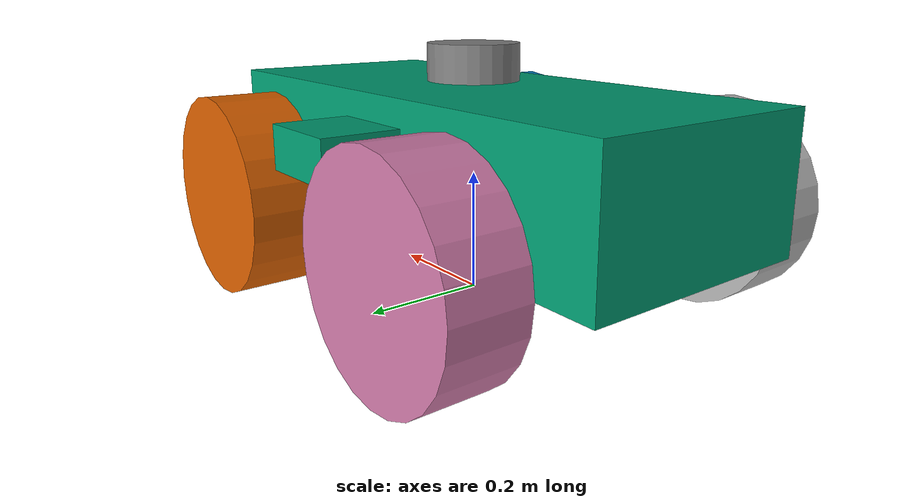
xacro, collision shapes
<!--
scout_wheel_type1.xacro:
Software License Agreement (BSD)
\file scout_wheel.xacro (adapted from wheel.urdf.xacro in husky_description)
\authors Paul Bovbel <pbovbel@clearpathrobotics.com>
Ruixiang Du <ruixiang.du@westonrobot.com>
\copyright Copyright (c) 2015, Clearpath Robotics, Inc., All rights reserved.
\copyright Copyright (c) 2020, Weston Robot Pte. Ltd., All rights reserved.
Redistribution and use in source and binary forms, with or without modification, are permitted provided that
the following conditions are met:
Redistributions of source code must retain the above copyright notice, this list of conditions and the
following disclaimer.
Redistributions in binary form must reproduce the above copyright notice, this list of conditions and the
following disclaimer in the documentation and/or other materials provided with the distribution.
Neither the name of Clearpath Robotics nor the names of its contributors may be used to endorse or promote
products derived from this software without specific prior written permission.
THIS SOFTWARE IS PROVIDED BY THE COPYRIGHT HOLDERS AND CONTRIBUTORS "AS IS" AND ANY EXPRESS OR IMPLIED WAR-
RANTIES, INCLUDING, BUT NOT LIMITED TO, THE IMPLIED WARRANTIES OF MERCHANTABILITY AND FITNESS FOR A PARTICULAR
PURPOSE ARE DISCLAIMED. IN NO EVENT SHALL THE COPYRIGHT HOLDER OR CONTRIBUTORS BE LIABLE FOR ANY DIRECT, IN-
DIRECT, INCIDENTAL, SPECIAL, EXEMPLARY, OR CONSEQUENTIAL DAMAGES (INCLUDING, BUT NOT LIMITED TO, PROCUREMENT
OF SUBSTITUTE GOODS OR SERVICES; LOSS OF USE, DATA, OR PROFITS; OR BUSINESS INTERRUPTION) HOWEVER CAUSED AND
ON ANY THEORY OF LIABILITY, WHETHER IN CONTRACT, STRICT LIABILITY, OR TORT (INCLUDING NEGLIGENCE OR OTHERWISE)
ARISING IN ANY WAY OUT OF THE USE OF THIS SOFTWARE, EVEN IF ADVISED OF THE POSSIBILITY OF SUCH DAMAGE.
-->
<?xml version="1.0"?>

<robot name="scout_v2" xmlns:xacro="http://ros.org/wiki/xacro">

	<!-- odometry source: world ground truth or wheels encoders -->
	<xacro:arg name="odometry_source" default="ground_truth" />

	<!-- load gazebo xacro -->
	<xacro:arg name="load_gazebo" default="true" />

	<xacro:arg name="simulation" default="true" />

	<xacro:include filename="$(find agilex_scout)/urdf/mobile_robot/scout_v2.urdf.xacro" />
	<xacro:scout_v2 odometry_source="$(arg odometry_source)" load_gazebo="$(arg load_gazebo)" />

	<xacro:unless value="$(arg simulation)">

		<!-- addition of OS1 sensor when loading the real Scout -->
		<xacro:include filename="$(find agilex_scout)/urdf/sensors/os1.urdf" />

		<joint name="os1_joint" type="fixed">
			<origin xyz="0.2 0.0 0.64" rpy="0.0 0.0 0.0" />
			<parent link="mobile_robot_base_link" />
			<child link="os_sensor" />
		</joint>

	</xacro:unless>

</robot>

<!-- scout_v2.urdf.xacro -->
<robot name="scout_v2" xmlns:xacro="http://ros.org/wiki/xacro">

	<xacro:macro name="scout_v2" params="odometry_source load_gazebo">

		<!-- Variables -->

		<!-- Collision boxes geometries -->
		<xacro:property name="base_x_size" value="0.9250000" />
		<xacro:property name="base_y_size" value="0.380000" />
		<xacro:property name="base_z_size" value="0.210000" />

		<!-- vehicle geometries -->
		<xacro:property name="wheelbase" value="0.498" />
		<xacro:property name="track" value="0.58306" />
		<xacro:property name="wheel_vertical_offset" value="-0.0702" />

		<xacro:property name="wheel_length" value="1.1653e-01" />
		<xacro:property name="wheel_radius" value="1.6459e-01" />

		<!-- virtual joints to link to ground and to odom -->
		<link name="base_footprint" />

		<joint name="base_footprint_to_base_link" type="fixed">
			<origin xyz="0 0 ${wheel_radius - wheel_vertical_offset}" rpy="0 0 0" />
			<parent link="base_footprint" />
			<child link="base_link" />
		</joint>

		<link name="base_link" />

		<joint name="base_link_to_mobile_robot" type="fixed">
			<origin xyz="0 0 0" rpy="0 0 0" />
			<parent link="base_link" />
			<child link="mobile_robot_base_link" />
		</joint>

		<!-- Base link -->
		<link name="mobile_robot_base_link">
			<visual>
				<origin xyz="0 0 0" rpy="0 0 0" />
				<geometry>
					<mesh
						filename="file://$(find agilex_scout)/meshes/mobile_robot/mobile_robot_base_link.dae" />
				</geometry>
			</visual>
			<collision>
				<origin xyz="0 0 0.008" rpy="0 0 0" />
				<geometry>
					<box size="${base_x_size} ${base_y_size} ${base_z_size}" />
				</geometry>
			</collision>
			<collision>
				<origin xyz="0 0 ${base_z_size/6}" rpy="0 0 0" />
				<geometry>
					<box size="${base_x_size/6} ${base_y_size*1.65} ${base_z_size/3}" />
				</geometry>
			</collision>
		</link>

		<link name="inertial_link">
			<inertial>
				<mass value="50" />
				<origin xyz="0.0 0.0 0.0" />
				<inertia ixx="2.288641" ixy="0" ixz="0" iyy="5.103976" iyz="0" izz="3.431465" />
			</inertial>
		</link>

		<joint name="inertial_joint" type="fixed">
			<origin xyz="0 0 0" rpy="0 0 0" />
			<parent link="mobile_robot_base_link" />
			<child link="inertial_link" />
		</joint>

		<!-- Scout wheel macros -->
		<xacro:include filename="$(find agilex_scout)/urdf/mobile_robot/scout_wheel_type1.xacro" />
		<xacro:include filename="$(find agilex_scout)/urdf/mobile_robot/scout_wheel_type2.xacro" />
		<!-- wheel labeled from 0 to 3, conter-clockwise, starting from front right wheel -->
		<!-- motor 1 and 2 (left side) are mechanically installed in a reversed direction -->
		<xacro:scout_wheel_type1 wheel_prefix="front_right" x="${wheelbase/2}" y="${-track/2}"
			z="${wheel_vertical_offset}" phi="0" />

		<xacro:scout_wheel_type2 wheel_prefix="front_left" x="${wheelbase/2}" y="${track/2}"
			z="${wheel_vertical_offset}" phi="0" />

		<xacro:scout_wheel_type1 wheel_prefix="rear_left" x="${-wheelbase/2}" y="${track/2}"
			z="${wheel_vertical_offset}" phi="0" />

		<xacro:scout_wheel_type2 wheel_prefix="rear_right" x="${-wheelbase/2}" y="${-track/2}"
			z="${wheel_vertical_offset}" phi="0" />

		<link name="front_mount" />

		<joint name="front_mount_joint" type="fixed">
			<origin xyz="0.325 0.0 0.112701" rpy="0 0 0" />
			<parent link="mobile_robot_base_link" />
			<child link="front_mount" />
		</joint>

		<link name="rear_mount" />

		<joint name="rear_mount_joint" type="fixed">
			<origin xyz="-0.325 0.0 0.112701" rpy="0 0 0" />
			<parent link="mobile_robot_base_link" />
			<child link="rear_mount" />
		</joint>

		<!-- Gazebo definitions  -->
		<xacro:if value="${load_gazebo}">
			<xacro:include filename="$(find agilex_scout)/urdf/mobile_robot/scout_v2.gazebo" />
		</xacro:if>

	</xacro:macro>

</robot>

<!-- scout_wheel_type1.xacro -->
<robot xmlns:xacro="http://ros.org/wiki/xacro" name="scout_v2">

	<xacro:macro name="scout_wheel_type1" params="wheel_prefix x y z phi">

		<link name="${wheel_prefix}_wheel_link">
			<inertial>
				<mass value="8" />
				<origin xyz="0 0 0" />
				<inertia ixx="0.1171" ixy="0" ixz="0" iyy="0.1361" iyz="0" izz="0.1171" />
			</inertial>
			<visual>
				<origin xyz="0 0 0" rpy="0 0 0" />
				<geometry>
					<mesh filename="file://$(find agilex_scout)/meshes/mobile_robot/wheel_type1.dae" />
				</geometry>
			</visual>
			<collision>
				<origin xyz="0 0 0" rpy="${pi/2} 0 0" />
				<geometry>
					<cylinder length="${wheel_length}" radius="${wheel_radius}" />
				</geometry>
				<surface>
					<contact>
						<ode>
							<min_depth>0.001</min_depth>
							<kp>1000000000.0</kp>
							<kd>0.0</kd>
						</ode>
					</contact>
					<friction>
						<ode>
							<mu>0.9</mu>
							<mu2>0.7</mu2>
							<fdir1>1 0 0</fdir1>
						</ode>
					</friction>
				</surface>
			</collision>
		</link>

		<!-- if gazebo is loaded, simulate the robot wheel rotations and broadcast the join states-->
		<xacro:if value="$(arg load_gazebo)">
			<joint name="${wheel_prefix}_wheel" type="continuous">
				<parent link="mobile_robot_base_link" />
				<child link="${wheel_prefix}_wheel_link" />
				<origin xyz="${x} ${y} ${z}" rpy="${phi} 0.0 0.0" />
				<axis xyz="0 1 0" rpy="0 0 0" />
				<dynamics damping="0.0" friction="20" />
			</joint>
		</xacro:if>

		<!-- if real robot is loaded, fixed wheels are used because no joint broadcasters are available -->
		<xacro:unless value="$(arg load_gazebo)">
			<joint name="${wheel_prefix}_wheel" type="fixed">
				<parent link="mobile_robot_base_link" />
				<child link="${wheel_prefix}_wheel_link" />
				<origin xyz="${x} ${y} ${z}" rpy="${phi} 0.0 0.0" />
				<axis xyz="0 1 0" rpy="0 0 0" />
			</joint>
		</xacro:unless>

	</xacro:macro>

</robot>

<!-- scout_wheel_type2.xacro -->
<robot xmlns:xacro="http://ros.org/wiki/xacro" name="scout_v2">

	<xacro:macro name="scout_wheel_type2" params="wheel_prefix x y z phi">

		<link name="${wheel_prefix}_wheel_link">
			<inertial>
				<mass value="8" />
				<origin xyz="0 0 0" />
				<inertia ixx="0.1171" ixy="0" ixz="0" iyy="0.1361" iyz="0" izz="0.1171" />
			</inertial>
			<visual>
				<origin xyz="0 0 0" rpy="0 0 0" />
				<geometry>
					<mesh filename="file://$(find agilex_scout)/meshes/mobile_robot/wheel_type2.dae" />
				</geometry>
			</visual>
			<collision>
				<origin xyz="0 0 0" rpy="${pi/2} 0 0" />
				<geometry>
					<cylinder length="${wheel_length}" radius="${wheel_radius}" />
				</geometry>
				<surface>
					<contact>
						<ode>
							<min_depth>0.001</min_depth>
							<kp>1000000000.0</kp>
							<kd>0.0</kd>
						</ode>
					</contact>
					<friction>
						<ode>
							<mu>0.9</mu>
							<mu2>0.7</mu2>
							<fdir1>1 0 0</fdir1>
						</ode>
					</friction>
				</surface>
			</collision>
		</link>

		<!-- if gazebo is loaded, simulate the robot wheel rotations and broadcast the join states-->
		<xacro:if value="$(arg load_gazebo)">
			<joint name="${wheel_prefix}_wheel" type="continuous">
				<parent link="mobile_robot_base_link" />
				<child link="${wheel_prefix}_wheel_link" />
				<origin xyz="${x} ${y} ${z}" rpy="${phi} 0.0 0.0" />
				<axis xyz="0 1 0" rpy="0 0 0" />
				<dynamics damping="0.0" friction="20" />
			</joint>
		</xacro:if>

		<!-- if real robot is loaded, fixed wheels are used because no joint broadcasters are available -->
		<xacro:unless value="$(arg load_gazebo)">
			<joint name="${wheel_prefix}_wheel" type="fixed">
				<parent link="mobile_robot_base_link" />
				<child link="${wheel_prefix}_wheel_link" />
				<origin xyz="${x} ${y} ${z}" rpy="${phi} 0.0 0.0" />
				<axis xyz="0 1 0" rpy="0 0 0" />
			</joint>
		</xacro:unless>

	</xacro:macro>

</robot>

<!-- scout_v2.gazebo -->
<robot xmlns:xacro="http://ros.org/wiki/xacro" name="scout_v2">

	<material name="light_grey">
		<color rgba="0.5 0.5 0.5 1" />
	</material>

	<!-- choice of the lidar type: laserscan or pointcloud -->
	<xacro:arg name="lidar_type" default="3d" />
	<xacro:property name="lidar_type" value="$(arg lidar_type)" />

	<xacro:if value="${lidar_type == '2d'}">
		<xacro:property name="lidar" value="lidar_2d" />
	</xacro:if>
	<xacro:if value="${lidar_type == '3d'}">
		<xacro:property name="lidar" value="lidar_3d" />
	</xacro:if>

	<!-- LIDAR link and joint : cylinder on top of the robot center -->
	<link name="${lidar}">
		<collision>
			<origin xyz="0 0 0" rpy="0 0 0" />
			<geometry>
				<cylinder length="0.06" radius="0.075" />
			</geometry>
		</collision>

		<visual>
			<origin xyz="0 0 0" rpy="0 0 0" />
			<geometry>
				<cylinder length="0.06" radius="0.075" />
			</geometry>
			<material name="light_grey" />
		</visual>

		<inertial>
			<origin xyz="0 0 0" rpy="0 0 0" />
			<mass value="0.1" />
			<inertia ixx="${0.1 *(3*0.075*0.075 + 0.06*0.06)/ 12}" ixy="0" ixz="0"
				iyy="${0.1 *(3*0.075*0.075 + 0.06*0.06)/ 12}"
				iyz="0" izz="${0.1*0.075*0.075 / 2}" />
		</inertial>
	</link>

	<joint name="mobile_robot_to_${lidar}" type="fixed">
		<parent link="mobile_robot_base_link" />
		<child link="${lidar}" />
		<origin xyz="0.0 0 0.15" rpy="0 0 0" />
	</joint>

	<gazebo reference="${lidar}">
		<material name="light_grey" />
	</gazebo>

	<link name="imu_frame" />

	<joint name="mobile_robot_to_imu" type="fixed">
		<parent link="mobile_robot_base_link" />
		<child link="imu_frame" />
		<origin xyz="0.0 0.0 0.08" rpy="0.0 0.0 0.0" />
	</joint>

	<!-- ........................... SENSOR PLUGIN ................................... -->

	<gazebo>
		<plugin filename="ignition-gazebo-sensors-system" name="ignition::gazebo::systems::Sensors">
			<render_engine>ogre2</render_engine>
		</plugin>

		<plugin filename="ignition-gazebo-imu-system" name="ignition::gazebo::systems::Imu">
		</plugin>

		<plugin filename="ignition-gazebo-joint-state-publisher-system"
			name="ignition::gazebo::systems::JointStatePublisher">
		</plugin>
	</gazebo>
	<!-- ........................... DIFFERENTIAL DRIVE PLUGIN ................................... -->

	<gazebo>
		<plugin
			filename="ignition-gazebo-diff-drive-system"
			name="ignition::gazebo::systems::DiffDrive">
			<left_joint>front_left_wheel</left_joint>
			<left_joint>rear_left_wheel</left_joint>
			<right_joint>front_right_wheel</right_joint>
			<right_joint>rear_right_wheel</right_joint>
			<wheel_separation>${track}</wheel_separation>
			<wheel_radius>${wheel_radius}</wheel_radius>
			<topic>/scout/cmd_vel</topic>
			<xacro:if value="${odometry_source == 'encoders'}">
				<!-- NOTE: odometry source from wheel encoders not working for skid steering
				kinematis robot -->
				<odom_topic>/scout/odometry</odom_topic>
				<odom_publish_frequency>50</odom_publish_frequency>
				<tf_topic>/scout/tf</tf_topic>
			</xacro:if>
			<frame_id>odom</frame_id>
			<child_frame_id>base_footprint</child_frame_id>
			<max_linear_acceleration>2</max_linear_acceleration>
			<min_linear_acceleration>-2</min_linear_acceleration>
			<max_angular_acceleration>1</max_angular_acceleration>
			<min_angular_acceleration>-1</min_angular_acceleration>
			<max_linear_velocity>10</max_linear_velocity>
			<min_linear_velocity>-10</min_linear_velocity>
			<max_angular_velocity>1</max_angular_velocity>
			<min_angular_velocity>-1</min_angular_velocity>
		</plugin>
	</gazebo>

	<!-- ........................... IMU config ................................... -->

	<gazebo reference="imu_frame">
		<sensor name="imu_sensor" type="imu">
			<always_on>1</always_on>
			<update_rate>1</update_rate>
			<ignition_frame_id>imu_frame</ignition_frame_id>
			<visualize>true</visualize>
			<topic>/scout/imu</topic>
		</sensor>
	</gazebo>

	<!-- ............................. ground truth .................................... -->
	<!-- NOTE: only source of odometry actually working for a skid steering robot -->
	<xacro:if value="${odometry_source == 'ground_truth'}">
		<gazebo>
			<plugin filename="libignition-gazebo6-odometry-publisher-system"
				name="ignition::gazebo::systems::OdometryPublisher">
				<odom_frame>odom</odom_frame>
				<robot_base_frame>base_footprint</robot_base_frame>
				<odom_topic>/scout/odometry</odom_topic>
				<tf_topic>/scout/tf</tf_topic>
				<dimensions>2</dimensions>
				<odom_publish_frequency>50</odom_publish_frequency>
				<gaussian_noise>0.001</gaussian_noise>
			</plugin>
		</gazebo>
	</xacro:if>

	<!-- ........................... 2D LIDAR = LASERSCAN ................................... -->

	<gazebo reference="lidar_2d">
		<sensor name='gpu_lidar' type='gpu_lidar'>
			<topic>/scout/laser_scan</topic>
			<update_rate>10</update_rate>
			<ignition_frame_id>lidar_2d</ignition_frame_id>
			<lidar>
				<scan>
					<horizontal>
						<samples>720</samples>
						<resolution>1</resolution>
						<min_angle>0.0</min_angle>
						<max_angle>${2.0*pi}</max_angle>
					</horizontal>
				</scan>
				<range>
					<min>0.55</min>
					<max>16</max>
					<resolution>0.01</resolution>
				</range>
				<noise>
					<type>gaussian</type>
					<mean>0.0</mean>
					<stddev>0.001</stddev>
				</noise>
			</lidar>
			<alwaysOn>1</alwaysOn>
			<visualize>true</visualize>
		</sensor>
	</gazebo>

	<!-- ........................... 3D LIDAR = POINTCLOUD ................................... -->

	<gazebo reference="lidar_3d">
		<sensor name='gpu_lidar' type='gpu_lidar'>
			<topic>/scout/pointcloud</topic>
			<update_rate>10</update_rate>
			<ignition_frame_id>lidar_3d</ignition_frame_id>
			<lidar>
				<scan>
					<horizontal>
						<samples>1024</samples>
						<resolution>0.001</resolution>
						<min_angle>-3.14</min_angle>
						<max_angle>+3.14</max_angle>
					</horizontal>
					<vertical>
						<samples>32</samples>
						<resolution>0.001</resolution>
						<min_angle>-0.393</min_angle>
						<max_angle>0.393</max_angle>
					</vertical>
				</scan>
				<range>
					<min>0.5</min>
					<max>50.0</max>
					<resolution>0.005</resolution>
				</range>
				<noise>
					<type>gaussian</type>
					<mean>0.0</mean>
					<stddev>0.001</stddev>
				</noise>
			</lidar>
			<alwaysOn>1</alwaysOn>
			<visualize>true</visualize>
		</sensor>
	</gazebo>

</robot>
